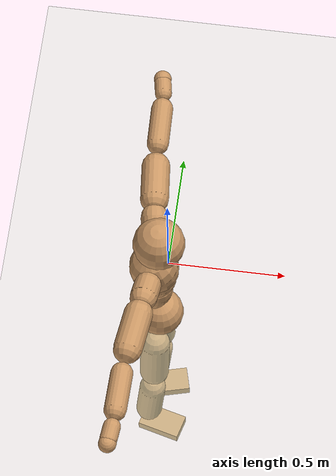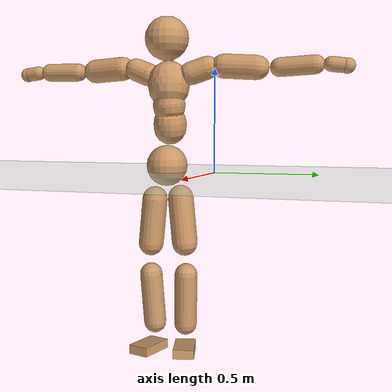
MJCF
<mujoco model="humanoid">
  <compiler coordinate="local"/>
  <default>
    <joint damping="0.0" armature="0.01" stiffness="0.0" limited="true"/>
    <geom conaffinity="1" condim="3" contype="7" margin="0.001" rgba="0.8 0.6 .4 1"/>
  </default>
  <asset>
    <texture type="skybox" builtin="gradient" rgb1=".4 .5 .6" rgb2="0 0 0" width="100" height="100"/>
    <texture builtin="flat" height="1278" mark="cross" markrgb="1 1 1" name="texgeom" random="0.01" rgb1="0.8 0.6 0.4" rgb2="0.8 0.6 0.4" type="cube" width="127"/>
    <texture builtin="checker" height="100" name="texplane" rgb1="0 0 0" rgb2="0.8 0.8 0.8" type="2d" width="100"/>
    <material name="MatPlane" reflectance="0.5" shininess="1" specular="1" texrepeat="60 60" texture="texplane"/>
    <material name="geom" texture="texgeom" texuniform="true"/>
  </asset>
  <worldbody>
    <light cutoff="100" diffuse="1 1 1" dir="-0 0 -1.3" directional="true" exponent="1" pos="0 0 1.3" specular=".1 .1 .1"/>
    <geom conaffinity="1" condim="3" name="floor" pos="0 0 0" rgba="0.8 0.9 0.8 1" size="100 100 .2" type="plane" material="MatPlane"/>
    <body name="Pelvis" pos="-0.0037 -0.2458 0.0304">
      <freejoint name="Pelvis"/>
      <geom type="sphere" contype="1" conaffinity="1" density="500" size="0.1010" pos="0.0000 0.0000 0.0000" name="Pelvis"/>
      <body name="L_Hip" pos="-0.0165 0.0585 -0.0842">
        <joint name="L_Hip_x" type="hinge" pos="0 0 0" axis="1 0 0" stiffness="800" damping="80" armature="0.02" range="-180.0000 180.0000"/>
        <joint name="L_Hip_y" type="hinge" pos="0 0 0" axis="0 1 0" stiffness="800" damping="80" armature="0.02" range="-180.0000 180.0000"/>
        <joint name="L_Hip_z" type="hinge" pos="0 0 0" axis="0 0 1" stiffness="800" damping="80" armature="0.02" range="-180.0000 180.0000"/>
        <geom type="capsule" contype="1" conaffinity="1" density="500" fromto="0.0011 0.0076 -0.0755 0.0042 0.0305 -0.3021" size="0.063" name="L_Hip"/>
        <body name="L_Knee" pos="0.0053 0.0381 -0.3776">
          <joint name="L_Knee_x" type="hinge" pos="0 0 0" axis="1 0 0" stiffness="800" damping="80" armature="0.02" range="-180.0000 180.0000"/>
          <joint name="L_Knee_y" type="hinge" pos="0 0 0" axis="0 1 0" stiffness="800" damping="80" armature="0.02" range="-180.0000 180.0000"/>
          <joint name="L_Knee_z" type="hinge" pos="0 0 0" axis="0 0 1" stiffness="800" damping="80" armature="0.02" range="-180.0000 180.0000"/>
          <geom type="capsule" contype="1" conaffinity="1" density="500" fromto="-0.0080 -0.0034 -0.0857 -0.0322 -0.0135 -0.3426" size="0.0568" name="L_Knee"/>
          <body name="L_Ankle" pos="-0.0402 -0.0169 -0.4283">
            <joint name="L_Ankle_x" type="hinge" pos="0 0 0" axis="1 0 0" stiffness="800" damping="80" armature="0.02" range="-180.0000 180.0000"/>
            <joint name="L_Ankle_y" type="hinge" pos="0 0 0" axis="0 1 0" stiffness="800" damping="80" armature="0.02" range="-180.0000 180.0000"/>
            <joint name="L_Ankle_z" type="hinge" pos="0 0 0" axis="0 0 1" stiffness="800" damping="80" armature="0.02" range="-180.0000 180.0000"/>
            <geom type="box" contype="1" conaffinity="1" density="500" pos="0.0627 0.0163 -0.0298" size="0.0916 0.0514 0.0231" quat="0.9919 0.0000 0.0000 0.1271" name="L_Ankle"/>
            <body name="L_Toe" pos="0.1254 0.0327 -0.0596">
              <joint name="L_Toe_x" type="hinge" pos="0 0 0" axis="1 0 0" stiffness="500" damping="50" armature="0.02" range="-180.0000 180.0000"/>
              <joint name="L_Toe_y" type="hinge" pos="0 0 0" axis="0 1 0" stiffness="500" damping="50" armature="0.02" range="-180.0000 180.0000"/>
              <joint name="L_Toe_z" type="hinge" pos="0 0 0" axis="0 0 1" stiffness="500" damping="50" armature="0.02" range="-180.0000 180.0000"/>
              <geom type="box" contype="1" conaffinity="1" density="500" pos="0.0000 0.0000 0.0290" size="0.0011 0.0026 0.0011" quat="0.9912 0.0000 0.0000 0.1325" name="L_Toe"/>
            </body>
          </body>
        </body>
      </body>
      <body name="R_Hip" pos="-0.0109 -0.0614 -0.0935">
        <joint name="R_Hip_x" type="hinge" pos="0 0 0" axis="1 0 0" stiffness="800" damping="80" armature="0.02" range="-180.0000 180.0000"/>
        <joint name="R_Hip_y" type="hinge" pos="0 0 0" axis="0 1 0" stiffness="800" damping="80" armature="0.02" range="-180.0000 180.0000"/>
        <joint name="R_Hip_z" type="hinge" pos="0 0 0" axis="0 0 1" stiffness="800" damping="80" armature="0.02" range="-180.0000 180.0000"/>
        <geom type="capsule" contype="1" conaffinity="1" density="500" fromto="-0.0015 -0.0078 -0.0759 -0.0060 -0.0310 -0.3035" size="0.0626" name="R_Hip"/>
        <body name="R_Knee" pos="-0.0075 -0.0388 -0.3794">
          <joint name="R_Knee_x" type="hinge" pos="0 0 0" axis="1 0 0" stiffness="800" damping="80" armature="0.02" range="-180.0000 180.0000"/>
          <joint name="R_Knee_y" type="hinge" pos="0 0 0" axis="0 1 0" stiffness="800" damping="80" armature="0.02" range="-180.0000 180.0000"/>
          <joint name="R_Knee_z" type="hinge" pos="0 0 0" axis="0 0 1" stiffness="800" damping="80" armature="0.02" range="-180.0000 180.0000"/>
          <geom type="capsule" contype="1" conaffinity="1" density="500" fromto="-0.0072 0.0042 -0.0845 -0.0288 0.0169 -0.3381" size="0.0566" name="R_Knee"/>
          <body name="R_Ankle" pos="-0.036 0.0211 -0.4227">
            <joint name="R_Ankle_x" type="hinge" pos="0 0 0" axis="1 0 0" stiffness="800" damping="80" armature="0.02" range="-180.0000 180.0000"/>
            <joint name="R_Ankle_y" type="hinge" pos="0 0 0" axis="0 1 0" stiffness="800" damping="80" armature="0.02" range="-180.0000 180.0000"/>
            <joint name="R_Ankle_z" type="hinge" pos="0 0 0" axis="0 0 1" stiffness="800" damping="80" armature="0.02" range="-180.0000 180.0000"/>
            <geom type="box" contype="1" conaffinity="1" density="500" pos="0.0666 -0.0177 -0.0312" size="0.0918 0.0527 0.0229" quat="0.9916 0.0000 0.0000 -0.1294" name="R_Ankle"/>
            <body name="R_Toe" pos="0.1331 -0.0354 -0.0624">
              <joint name="R_Toe_x" type="hinge" pos="0 0 0" axis="1 0 0" stiffness="500" damping="50" armature="0.02" range="-180.0000 180.0000"/>
              <joint name="R_Toe_y" type="hinge" pos="0 0 0" axis="0 1 0" stiffness="500" damping="50" armature="0.02" range="-180.0000 180.0000"/>
              <joint name="R_Toe_z" type="hinge" pos="0 0 0" axis="0 0 1" stiffness="500" damping="50" armature="0.02" range="-180.0000 180.0000"/>
              <geom type="box" contype="1" conaffinity="1" density="500" pos="0.0000 0.0000 0.0308" size="0.0012 0.0026 0.0011" quat="0.9927 0.0000 0.0000 -0.1207" name="R_Toe"/>
            </body>
          </body>
        </body>
      </body>
      <body name="Torso" pos="-0.0386 0.0047 0.1287">
        <joint name="Torso_x" type="hinge" pos="0 0 0" axis="1 0 0" stiffness="1000" damping="100" armature="0.02" range="-180.0000 180.0000"/>
        <joint name="Torso_y" type="hinge" pos="0 0 0" axis="0 1 0" stiffness="1000" damping="100" armature="0.02" range="-180.0000 180.0000"/>
        <joint name="Torso_z" type="hinge" pos="0 0 0" axis="0 0 1" stiffness="1000" damping="100" armature="0.02" range="-180.0000 180.0000"/>
        <geom type="capsule" contype="1" conaffinity="1" density="500" fromto="0.0162 0.0030 0.0837 0.0108 0.0020 0.0558" size="0.08091" name="Torso"/>
        <body name="Spine" pos="0.027 0.0049 0.1396">
          <joint name="Spine_x" type="hinge" pos="0 0 0" axis="1 0 0" stiffness="1000" damping="100" armature="0.02" range="-180.0000 180.0000"/>
          <joint name="Spine_y" type="hinge" pos="0 0 0" axis="0 1 0" stiffness="1000" damping="100" armature="0.02" range="-180.0000 180.0000"/>
          <joint name="Spine_z" type="hinge" pos="0 0 0" axis="0 0 1" stiffness="1000" damping="100" armature="0.02" range="-180.0000 180.0000"/>
          <geom type="capsule" contype="1" conaffinity="1" density="500" fromto="0.0032 -0.0013 0.0338 0.0021 -0.0009 0.0225" size="0.080538" name="Spine"/>
          <body name="Chest" pos="0.0053 -0.0022 0.0563">
            <joint name="Chest_x" type="hinge" pos="0 0 0" axis="1 0 0" stiffness="1000" damping="100" armature="0.02" range="-180.0000 180.0000"/>
            <joint name="Chest_y" type="hinge" pos="0 0 0" axis="0 1 0" stiffness="1000" damping="100" armature="0.02" range="-180.0000 180.0000"/>
            <joint name="Chest_z" type="hinge" pos="0 0 0" axis="0 0 1" stiffness="1000" damping="100" armature="0.02" range="-180.0000 180.0000"/>
            <geom type="capsule" contype="1" conaffinity="1" density="500" fromto="-0.0153 -0.0051 0.0884 -0.0102 -0.0034 0.0589" size="0.101835" name="Chest"/>
            <body name="Neck" pos="-0.0366 -0.0155 0.2119">
              <joint name="Neck_x" type="hinge" pos="0 0 0" axis="1 0 0" stiffness="500" damping="50" armature="0.02" range="-180.0000 180.0000"/>
              <joint name="Neck_y" type="hinge" pos="0 0 0" axis="0 1 0" stiffness="500" damping="50" armature="0.02" range="-180.0000 180.0000"/>
              <joint name="Neck_z" type="hinge" pos="0 0 0" axis="0 0 1" stiffness="500" damping="50" armature="0.02" range="-180.0000 180.0000"/>
              <geom type="capsule" contype="1" conaffinity="1" density="500" fromto="0.0094 0.0018 0.0166 0.0375 0.0073 0.0665" size="0.044175" name="Neck"/>
              <body name="Head" pos="0.0468 0.0091 0.0832">
                <joint name="Head_x" type="hinge" pos="0 0 0" axis="1 0 0" stiffness="500" damping="50" armature="0.02" range="-180.0000 180.0000"/>
                <joint name="Head_y" type="hinge" pos="0 0 0" axis="0 1 0" stiffness="500" damping="50" armature="0.02" range="-180.0000 180.0000"/>
                <joint name="Head_z" type="hinge" pos="0 0 0" axis="0 0 1" stiffness="500" damping="50" armature="0.02" range="-180.0000 180.0000"/>
                <geom type="sphere" contype="1" conaffinity="1" density="500" size="0.1077" pos="0.0000 0.0000 0.0000" name="Head"/>
              </body>
            </body>
            <body name="L_Thorax" pos="-0.0173 0.079 0.116">
              <joint name="L_Thorax_x" type="hinge" pos="0 0 0" axis="1 0 0" stiffness="500" damping="50" armature="0.02" range="-180.0000 180.0000"/>
              <joint name="L_Thorax_y" type="hinge" pos="0 0 0" axis="0 1 0" stiffness="500" damping="50" armature="0.02" range="-180.0000 180.0000"/>
              <joint name="L_Thorax_z" type="hinge" pos="0 0 0" axis="0 0 1" stiffness="500" damping="50" armature="0.02" range="-180.0000 180.0000"/>
              <geom type="capsule" contype="1" conaffinity="1" density="500" fromto="-0.0048 0.0269 0.0092 -0.0193 0.1075 0.0369" size="0.0569" name="L_Thorax"/>
              <body name="L_Shoulder" pos="-0.0241 0.1344 0.0462">
                <joint name="L_Shoulder_x" type="hinge" pos="0 0 0" axis="1 0 0" stiffness="500" damping="50" armature="0.02" range="-720.0000 720.0000"/>
                <joint name="L_Shoulder_y" type="hinge" pos="0 0 0" axis="0 1 0" stiffness="500" damping="50" armature="0.02" range="-720.0000 720.0000"/>
                <joint name="L_Shoulder_z" type="hinge" pos="0 0 0" axis="0 0 1" stiffness="500" damping="50" armature="0.02" range="-720.0000 720.0000"/>
                <geom type="capsule" contype="1" conaffinity="1" density="500" fromto="-0.0054 0.0531 -0.0034 -0.0214 0.2124 -0.0137" size="0.0596" name="L_Shoulder"/>
                <body name="L_Elbow" pos="-0.0268 0.2656 -0.0171">
                  <joint name="L_Elbow_x" type="hinge" pos="0 0 0" axis="1 0 0" stiffness="500" damping="50" armature="0.02" range="-720.0000 720.0000"/>
                  <joint name="L_Elbow_y" type="hinge" pos="0 0 0" axis="0 1 0" stiffness="500" damping="50" armature="0.02" range="-720.0000 720.0000"/>
                  <joint name="L_Elbow_z" type="hinge" pos="0 0 0" axis="0 0 1" stiffness="500" damping="50" armature="0.02" range="-720.0000 720.0000"/>
                  <geom type="capsule" contype="1" conaffinity="1" density="500" fromto="-0.0012 0.0552 0.0027 -0.0050 0.2207 0.0108" size="0.0458" name="L_Elbow"/>
                  <body name="L_Wrist" pos="-0.0062 0.2758 0.0136">
                    <joint name="L_Wrist_x" type="hinge" pos="0 0 0" axis="1 0 0" stiffness="300" damping="30" armature="0.02" range="-180.0000 180.0000"/>
                    <joint name="L_Wrist_y" type="hinge" pos="0 0 0" axis="0 1 0" stiffness="300" damping="30" armature="0.02" range="-180.0000 180.0000"/>
                    <joint name="L_Wrist_z" type="hinge" pos="0 0 0" axis="0 0 1" stiffness="300" damping="30" armature="0.02" range="-180.0000 180.0000"/>
                    <geom type="capsule" contype="1" conaffinity="1" density="500" fromto="-0.0032 0.0181 -0.0022 -0.0130 0.0723 -0.0088" size="0.0358" name="L_Wrist"/>
                    <body name="L_Hand" pos="-0.0162 0.0904 -0.011">
                      <joint name="L_Hand_x" type="hinge" pos="0 0 0" axis="1 0 0" stiffness="300" damping="30" armature="0.02" range="-180.0000 180.0000"/>
                      <joint name="L_Hand_y" type="hinge" pos="0 0 0" axis="0 1 0" stiffness="300" damping="30" armature="0.02" range="-180.0000 180.0000"/>
                      <joint name="L_Hand_z" type="hinge" pos="0 0 0" axis="0 0 1" stiffness="300" damping="30" armature="0.02" range="-180.0000 180.0000"/>
                      <geom type="sphere" contype="1" conaffinity="1" density="500" size="0.0372" pos="0.0000 0.0000 0.0000" name="L_Hand"/>
                    </body>
                  </body>
                </body>
              </body>
            </body>
            <body name="R_Thorax" pos="-0.0223 -0.0891 0.1141">
              <joint name="R_Thorax_x" type="hinge" pos="0 0 0" axis="1 0 0" stiffness="500" damping="50" armature="0.02" range="-180.0000 180.0000"/>
              <joint name="R_Thorax_y" type="hinge" pos="0 0 0" axis="0 1 0" stiffness="500" damping="50" armature="0.02" range="-180.0000 180.0000"/>
              <joint name="R_Thorax_z" type="hinge" pos="0 0 0" axis="0 0 1" stiffness="500" damping="50" armature="0.02" range="-180.0000 180.0000"/>
              <geom type="capsule" contype="1" conaffinity="1" density="500" fromto="-0.0023 -0.0242 0.0096 -0.0091 -0.0969 0.0383" size="0.0561" name="R_Thorax"/>
              <body name="R_Shoulder" pos="-0.0114 -0.1211 0.0478">
                <joint name="R_Shoulder_x" type="hinge" pos="0 0 0" axis="1 0 0" stiffness="500" damping="50" armature="0.02" range="-720.0000 720.0000"/>
                <joint name="R_Shoulder_y" type="hinge" pos="0 0 0" axis="0 1 0" stiffness="500" damping="50" armature="0.02" range="-720.0000 720.0000"/>
                <joint name="R_Shoulder_z" type="hinge" pos="0 0 0" axis="0 0 1" stiffness="500" damping="50" armature="0.02" range="-720.0000 720.0000"/>
                <geom type="capsule" contype="1" conaffinity="1" density="500" fromto="-0.0073 -0.0536 -0.0024 -0.0293 -0.2144 -0.0096" size="0.0598" name="R_Shoulder"/>
                <body name="R_Elbow" pos="-0.0367 -0.2679 -0.012">
                  <joint name="R_Elbow_x" type="hinge" pos="0 0 0" axis="1 0 0" stiffness="500" damping="50" armature="0.02" range="-720.0000 720.0000"/>
                  <joint name="R_Elbow_y" type="hinge" pos="0 0 0" axis="0 1 0" stiffness="500" damping="50" armature="0.02" range="-720.0000 720.0000"/>
                  <joint name="R_Elbow_z" type="hinge" pos="0 0 0" axis="0 0 1" stiffness="500" damping="50" armature="0.02" range="-720.0000 720.0000"/>
                  <geom type="capsule" contype="1" conaffinity="1" density="500" fromto="-0.0012 -0.0550 0.0010 -0.0046 -0.2201 0.0039" size="0.0464" name="R_Elbow"/>
                  <body name="R_Wrist" pos="-0.0058 -0.2751 0.0049">
                    <joint name="R_Wrist_x" type="hinge" pos="0 0 0" axis="1 0 0" stiffness="300" damping="30" armature="0.02" range="-180.0000 180.0000"/>
                    <joint name="R_Wrist_y" type="hinge" pos="0 0 0" axis="0 1 0" stiffness="300" damping="30" armature="0.02" range="-180.0000 180.0000"/>
                    <joint name="R_Wrist_z" type="hinge" pos="0 0 0" axis="0 0 1" stiffness="300" damping="30" armature="0.02" range="-180.0000 180.0000"/>
                    <geom type="capsule" contype="1" conaffinity="1" density="500" fromto="-0.0021 -0.0183 -0.0018 -0.0082 -0.0730 -0.0072" size="0.0361" name="R_Wrist"/>
                    <body name="R_Hand" pos="-0.0103 -0.0913 -0.009">
                      <joint name="R_Hand_x" type="hinge" pos="0 0 0" axis="1 0 0" stiffness="300" damping="30" armature="0.02" range="-180.0000 180.0000"/>
                      <joint name="R_Hand_y" type="hinge" pos="0 0 0" axis="0 1 0" stiffness="300" damping="30" armature="0.02" range="-180.0000 180.0000"/>
                      <joint name="R_Hand_z" type="hinge" pos="0 0 0" axis="0 0 1" stiffness="300" damping="30" armature="0.02" range="-180.0000 180.0000"/>
                      <geom type="sphere" contype="1" conaffinity="1" density="500" size="0.0372" pos="0.0000 0.0000 0.0000" name="R_Hand"/>
                    </body>
                  </body>
                </body>
              </body>
            </body>
          </body>
        </body>
      </body>
    </body>
  </worldbody>
  <actuator>
    <motor name="L_Hip_x" joint="L_Hip_x" gear="500"/>
    <motor name="L_Hip_y" joint="L_Hip_y" gear="500"/>
    <motor name="L_Hip_z" joint="L_Hip_z" gear="500"/>
    <motor name="L_Knee_x" joint="L_Knee_x" gear="500"/>
    <motor name="L_Knee_y" joint="L_Knee_y" gear="500"/>
    <motor name="L_Knee_z" joint="L_Knee_z" gear="500"/>
    <motor name="L_Ankle_x" joint="L_Ankle_x" gear="500"/>
    <motor name="L_Ankle_y" joint="L_Ankle_y" gear="500"/>
    <motor name="L_Ankle_z" joint="L_Ankle_z" gear="500"/>
    <motor name="L_Toe_x" joint="L_Toe_x" gear="500"/>
    <motor name="L_Toe_y" joint="L_Toe_y" gear="500"/>
    <motor name="L_Toe_z" joint="L_Toe_z" gear="500"/>
    <motor name="R_Hip_x" joint="R_Hip_x" gear="500"/>
    <motor name="R_Hip_y" joint="R_Hip_y" gear="500"/>
    <motor name="R_Hip_z" joint="R_Hip_z" gear="500"/>
    <motor name="R_Knee_x" joint="R_Knee_x" gear="500"/>
    <motor name="R_Knee_y" joint="R_Knee_y" gear="500"/>
    <motor name="R_Knee_z" joint="R_Knee_z" gear="500"/>
    <motor name="R_Ankle_x" joint="R_Ankle_x" gear="500"/>
    <motor name="R_Ankle_y" joint="R_Ankle_y" gear="500"/>
    <motor name="R_Ankle_z" joint="R_Ankle_z" gear="500"/>
    <motor name="R_Toe_x" joint="R_Toe_x" gear="500"/>
    <motor name="R_Toe_y" joint="R_Toe_y" gear="500"/>
    <motor name="R_Toe_z" joint="R_Toe_z" gear="500"/>
    <motor name="Torso_x" joint="Torso_x" gear="500"/>
    <motor name="Torso_y" joint="Torso_y" gear="500"/>
    <motor name="Torso_z" joint="Torso_z" gear="500"/>
    <motor name="Spine_x" joint="Spine_x" gear="500"/>
    <motor name="Spine_y" joint="Spine_y" gear="500"/>
    <motor name="Spine_z" joint="Spine_z" gear="500"/>
    <motor name="Chest_x" joint="Chest_x" gear="500"/>
    <motor name="Chest_y" joint="Chest_y" gear="500"/>
    <motor name="Chest_z" joint="Chest_z" gear="500"/>
    <motor name="Neck_x" joint="Neck_x" gear="500"/>
    <motor name="Neck_y" joint="Neck_y" gear="500"/>
    <motor name="Neck_z" joint="Neck_z" gear="500"/>
    <motor name="Head_x" joint="Head_x" gear="500"/>
    <motor name="Head_y" joint="Head_y" gear="500"/>
    <motor name="Head_z" joint="Head_z" gear="500"/>
    <motor name="L_Thorax_x" joint="L_Thorax_x" gear="500"/>
    <motor name="L_Thorax_y" joint="L_Thorax_y" gear="500"/>
    <motor name="L_Thorax_z" joint="L_Thorax_z" gear="500"/>
    <motor name="L_Shoulder_x" joint="L_Shoulder_x" gear="500"/>
    <motor name="L_Shoulder_y" joint="L_Shoulder_y" gear="500"/>
    <motor name="L_Shoulder_z" joint="L_Shoulder_z" gear="500"/>
    <motor name="L_Elbow_x" joint="L_Elbow_x" gear="500"/>
    <motor name="L_Elbow_y" joint="L_Elbow_y" gear="500"/>
    <motor name="L_Elbow_z" joint="L_Elbow_z" gear="500"/>
    <motor name="L_Wrist_x" joint="L_Wrist_x" gear="500"/>
    <motor name="L_Wrist_y" joint="L_Wrist_y" gear="500"/>
    <motor name="L_Wrist_z" joint="L_Wrist_z" gear="500"/>
    <motor name="L_Hand_x" joint="L_Hand_x" gear="500"/>
    <motor name="L_Hand_y" joint="L_Hand_y" gear="500"/>
    <motor name="L_Hand_z" joint="L_Hand_z" gear="500"/>
    <motor name="R_Thorax_x" joint="R_Thorax_x" gear="500"/>
    <motor name="R_Thorax_y" joint="R_Thorax_y" gear="500"/>
    <motor name="R_Thorax_z" joint="R_Thorax_z" gear="500"/>
    <motor name="R_Shoulder_x" joint="R_Shoulder_x" gear="500"/>
    <motor name="R_Shoulder_y" joint="R_Shoulder_y" gear="500"/>
    <motor name="R_Shoulder_z" joint="R_Shoulder_z" gear="500"/>
    <motor name="R_Elbow_x" joint="R_Elbow_x" gear="500"/>
    <motor name="R_Elbow_y" joint="R_Elbow_y" gear="500"/>
    <motor name="R_Elbow_z" joint="R_Elbow_z" gear="500"/>
    <motor name="R_Wrist_x" joint="R_Wrist_x" gear="500"/>
    <motor name="R_Wrist_y" joint="R_Wrist_y" gear="500"/>
    <motor name="R_Wrist_z" joint="R_Wrist_z" gear="500"/>
    <motor name="R_Hand_x" joint="R_Hand_x" gear="500"/>
    <motor name="R_Hand_y" joint="R_Hand_y" gear="500"/>
    <motor name="R_Hand_z" joint="R_Hand_z" gear="500"/>
  </actuator>
  <contact>
    <exclude body1="Torso" body2="Chest"/>
    <exclude body1="Head" body2="Chest"/>
    <exclude body1="R_Knee" body2="R_Toe"/>
    <exclude body1="R_Knee" body2="L_Ankle"/>
    <exclude body1="R_Knee" body2="L_Toe"/>
    <exclude body1="L_Knee" body2="L_Toe"/>
    <exclude body1="L_Knee" body2="R_Ankle"/>
    <exclude body1="L_Knee" body2="R_Toe"/>
    <exclude body1="L_Shoulder" body2="Chest"/>
    <exclude body1="R_Shoulder" body2="Chest"/>
  </contact>
  <sensor/>
  <size njmax="700" nconmax="700"/>
</mujoco>
